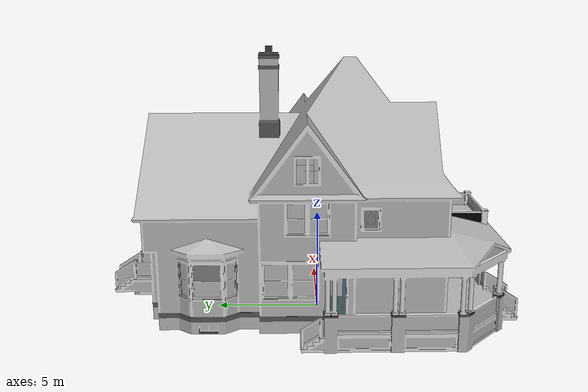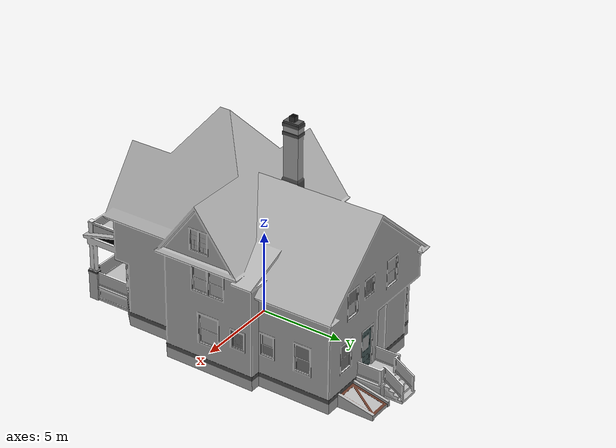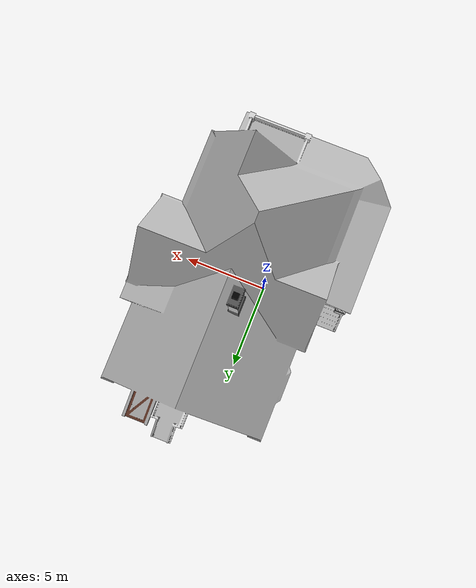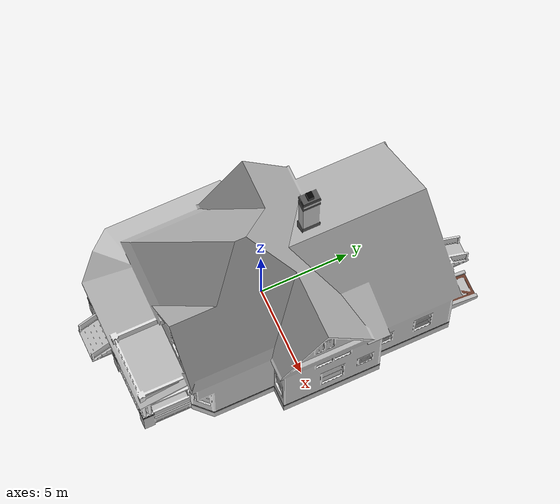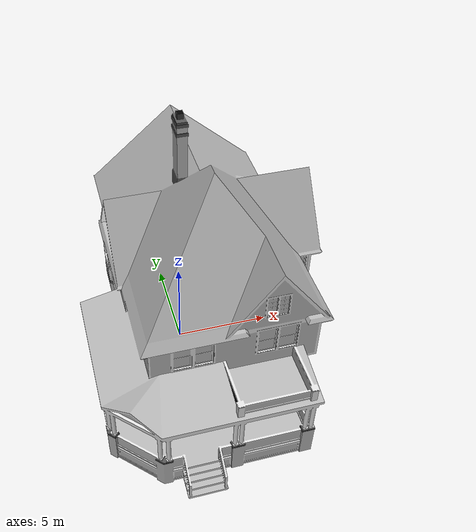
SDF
<?xml version="1.0" ?>
<sdf version="1.5">
  <model name="House 5">
    <static>true</static>
    <link name="link">
      <collision name="collision">
        <geometry>
          <mesh>
            <uri>model://house_5/meshes/house_5.dae</uri>
          </mesh>
        </geometry>
      </collision>
      <visual name="visual">
        <geometry>
          <mesh>
            <uri>model://house_5/meshes/house_5.dae</uri>
          </mesh>
        </geometry>
      </visual>
    </link>
  </model>
</sdf>
